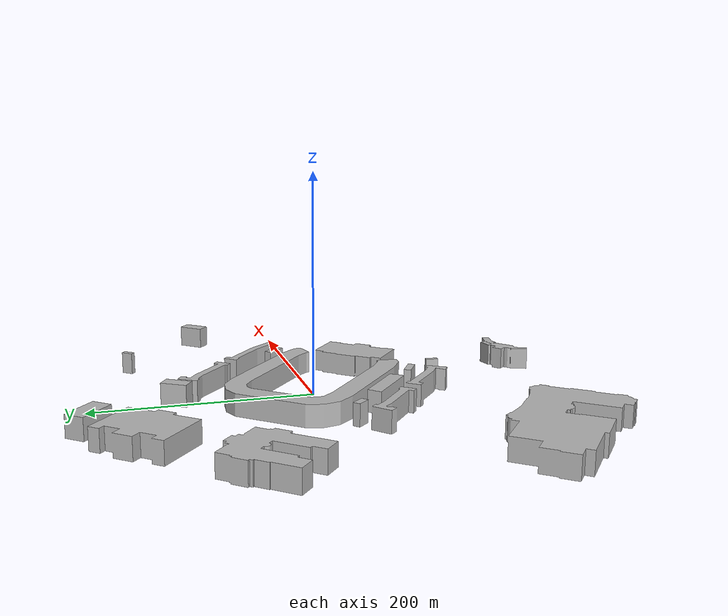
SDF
<?xml version="1.0" ?>
<sdf version='1.6'>
    <model name='uncc_engcampus'>
      <static>true</static>
        <link name="link">
            <collision name="collision">
              <geometry>
                <plane>
                  <normal>0 0 1</normal>
                  <size>100 100</size>
                </plane>
              </geometry>
                <surface>
                  <friction>
                    <ode>
                      <mu>100</mu>
                      <mu2>50</mu2>
                    </ode>
                  </friction>
                </surface>
            </collision>
            <visual name='visual'>
              <geometry>
                <mesh>
                  <scale>1 1 1</scale>
                  <uri>model://uncc_engcampus/meshes/custom_geometry_v2.dae</uri>
                </mesh>
              </geometry>
            </visual>
        </link>
    </model>
</sdf>
